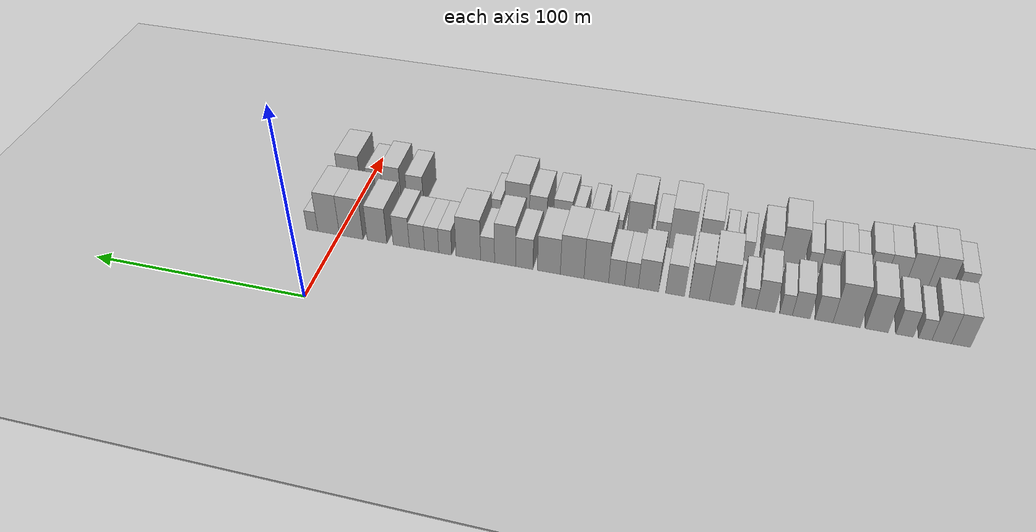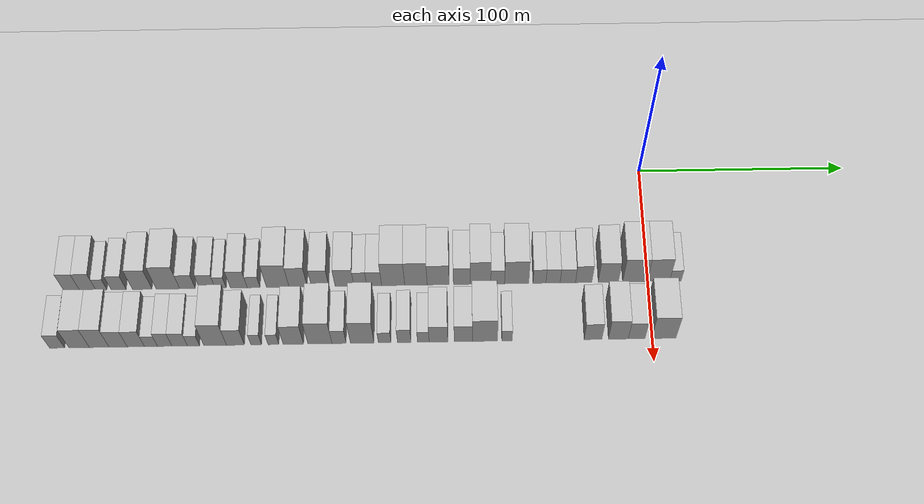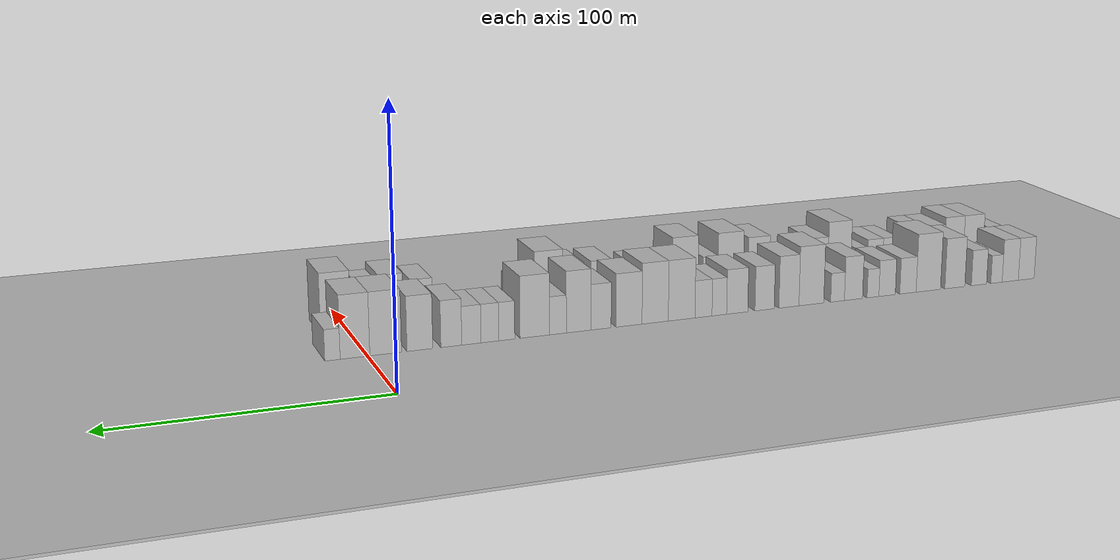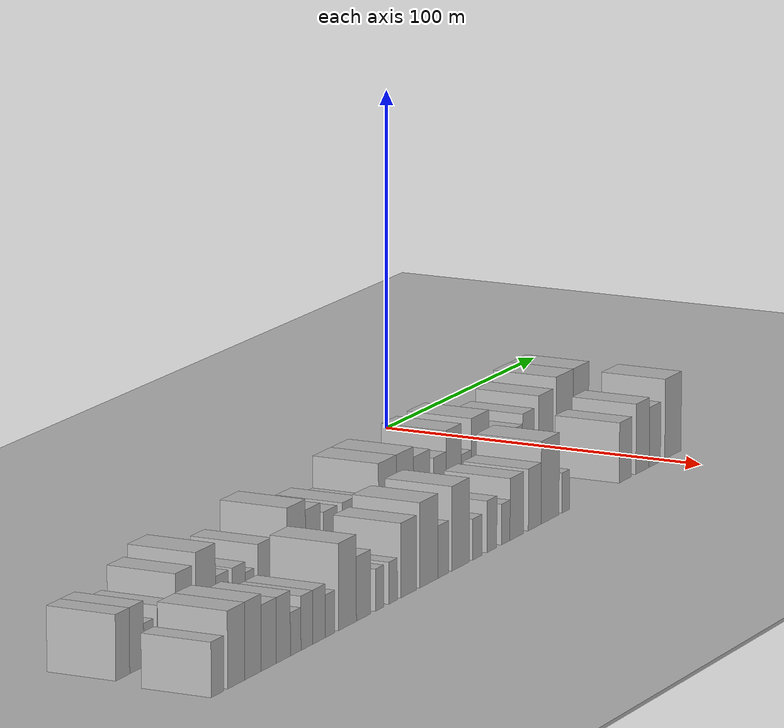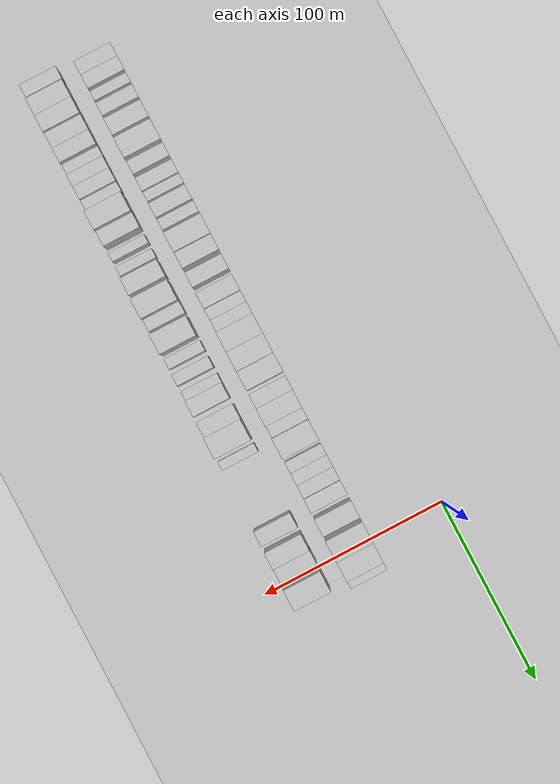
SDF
<sdf version="1.6">
 <world name="default">
  <include><name>ground_plane_1</name><uri>model://HANNAS_ground_plane</uri></include>
  <include>
   <name>ground_plane_2</name>
   <uri>model://HANNAS_ground_plane</uri>
   <pose>100 0 0  0 0 0</pose>
  </include>
  <model name="building_1">
   <static>1</static>
   <pose>50.0000 -271.2881 0 0.000000 0.000000 0.000000</pose>
   <link name="link">
    <pose>0 0 9.00 0 0 0</pose>
    <collision name="collision"><geometry><box><size>20.0000 7.4239 18.0000</size></box></geometry></collision>
    <visual name="visual">
     <cast_shadows>0</cast_shadows>
     <geometry><box><size>20.0000 7.4239 18.0000</size></box></geometry>
     <material>
      <script>
       <uri>model://HANNAS_wall/materials/scripts</uri>
       <uri>model://HANNAS_wall/materials/textures</uri>
       <name>vrc/HANNAS_wall</name>
      </script>
     </material>
    </visual>
   </link>
  </model>
  <model name="building_2">
   <static>1</static>
   <pose>50.0000 -263.7839 0 0.000000 0.000000 0.000000</pose>
   <link name="link">
    <pose>0 0 9.00 0 0 0</pose>
    <collision name="collision"><geometry><box><size>20.0000 7.5845 18.0000</size></box></geometry></collision>
    <visual name="visual">
     <cast_shadows>0</cast_shadows>
     <geometry><box><size>20.0000 7.5845 18.0000</size></box></geometry>
     <material>
      <script>
       <uri>model://HANNAS_wall/materials/scripts</uri>
       <uri>model://HANNAS_wall/materials/textures</uri>
       <name>vrc/HANNAS_wall</name>
      </script>
     </material>
    </visual>
   </link>
  </model>
  <model name="building_3">
   <static>1</static>
   <pose>50.0000 -257.3614 0 0.000000 0.000000 0.000000</pose>
   <link name="link">
    <pose>0 0 6.00 0 0 0</pose>
    <collision name="collision"><geometry><box><size>20.0000 5.2606 12.0000</size></box></geometry></collision>
    <visual name="visual">
     <cast_shadows>0</cast_shadows>
     <geometry><box><size>20.0000 5.2606 12.0000</size></box></geometry>
     <material>
      <script>
       <uri>model://HANNAS_wall/materials/scripts</uri>
       <uri>model://HANNAS_wall/materials/textures</uri>
       <name>vrc/HANNAS_wall</name>
      </script>
     </material>
    </visual>
   </link>
  </model>
  <model name="building_4">
   <static>1</static>
   <pose>50.0000 -249.2254 0 0.000000 0.000000 0.000000</pose>
   <link name="link">
    <pose>0 0 7.50 0 0 0</pose>
    <collision name="collision"><geometry><box><size>20.0000 7.0114 15.0000</size></box></geometry></collision>
    <visual name="visual">
     <cast_shadows>0</cast_shadows>
     <geometry><box><size>20.0000 7.0114 15.0000</size></box></geometry>
     <material>
      <script>
       <uri>model://HANNAS_wall/materials/scripts</uri>
       <uri>model://HANNAS_wall/materials/textures</uri>
       <name>vrc/HANNAS_wall</name>
      </script>
     </material>
    </visual>
   </link>
  </model>
  <model name="building_5">
   <static>1</static>
   <pose>50.0000 -238.1553 0 0.000000 0.000000 0.000000</pose>
   <link name="link">
    <pose>0 0 10.50 0 0 0</pose>
    <collision name="collision"><geometry><box><size>20.0000 9.1288 21.0000</size></box></geometry></collision>
    <visual name="visual">
     <cast_shadows>0</cast_shadows>
     <geometry><box><size>20.0000 9.1288 21.0000</size></box></geometry>
     <material>
      <script>
       <uri>model://HANNAS_wall/materials/scripts</uri>
       <uri>model://HANNAS_wall/materials/textures</uri>
       <name>vrc/HANNAS_wall</name>
      </script>
     </material>
    </visual>
   </link>
  </model>
  <model name="building_6">
   <static>1</static>
   <pose>50.0000 -226.0795 0 0.000000 0.000000 0.000000</pose>
   <link name="link">
    <pose>0 0 12.00 0 0 0</pose>
    <collision name="collision"><geometry><box><size>20.0000 11.0227 24.0000</size></box></geometry></collision>
    <visual name="visual">
     <cast_shadows>0</cast_shadows>
     <geometry><box><size>20.0000 11.0227 24.0000</size></box></geometry>
     <material>
      <script>
       <uri>model://HANNAS_wall/materials/scripts</uri>
       <uri>model://HANNAS_wall/materials/textures</uri>
       <name>vrc/HANNAS_wall</name>
      </script>
     </material>
    </visual>
   </link>
  </model>
  <model name="building_7">
   <static>1</static>
   <pose>50.0000 -216.9120 0 0.000000 0.000000 0.000000</pose>
   <link name="link">
    <pose>0 0 7.50 0 0 0</pose>
    <collision name="collision"><geometry><box><size>20.0000 7.3123 15.0000</size></box></geometry></collision>
    <visual name="visual">
     <cast_shadows>0</cast_shadows>
     <geometry><box><size>20.0000 7.3123 15.0000</size></box></geometry>
     <material>
      <script>
       <uri>model://HANNAS_wall/materials/scripts</uri>
       <uri>model://HANNAS_wall/materials/textures</uri>
       <name>vrc/HANNAS_wall</name>
      </script>
     </material>
    </visual>
   </link>
  </model>
  <model name="building_8">
   <static>1</static>
   <pose>50.0000 -207.6067 0 0.000000 0.000000 0.000000</pose>
   <link name="link">
    <pose>0 0 7.50 0 0 0</pose>
    <collision name="collision"><geometry><box><size>20.0000 7.2984 15.0000</size></box></geometry></collision>
    <visual name="visual">
     <cast_shadows>0</cast_shadows>
     <geometry><box><size>20.0000 7.2984 15.0000</size></box></geometry>
     <material>
      <script>
       <uri>model://HANNAS_wall/materials/scripts</uri>
       <uri>model://HANNAS_wall/materials/textures</uri>
       <name>vrc/HANNAS_wall</name>
      </script>
     </material>
    </visual>
   </link>
  </model>
  <model name="building_9">
   <static>1</static>
   <pose>50.0000 -201.3462 0 0.000000 0.000000 0.000000</pose>
   <link name="link">
    <pose>0 0 6.00 0 0 0</pose>
    <collision name="collision"><geometry><box><size>20.0000 5.2227 12.0000</size></box></geometry></collision>
    <visual name="visual">
     <cast_shadows>0</cast_shadows>
     <geometry><box><size>20.0000 5.2227 12.0000</size></box></geometry>
     <material>
      <script>
       <uri>model://HANNAS_wall/materials/scripts</uri>
       <uri>model://HANNAS_wall/materials/textures</uri>
       <name>vrc/HANNAS_wall</name>
      </script>
     </material>
    </visual>
   </link>
  </model>
  <model name="building_10">
   <static>1</static>
   <pose>50.0000 -192.7805 0 0.000000 0.000000 0.000000</pose>
   <link name="link">
    <pose>0 0 9.00 0 0 0</pose>
    <collision name="collision"><geometry><box><size>20.0000 7.9088 18.0000</size></box></geometry></collision>
    <visual name="visual">
     <cast_shadows>0</cast_shadows>
     <geometry><box><size>20.0000 7.9088 18.0000</size></box></geometry>
     <material>
      <script>
       <uri>model://HANNAS_wall/materials/scripts</uri>
       <uri>model://HANNAS_wall/materials/textures</uri>
       <name>vrc/HANNAS_wall</name>
      </script>
     </material>
    </visual>
   </link>
  </model>
  <model name="building_11">
   <static>1</static>
   <pose>50.0000 -185.8272 0 0.000000 0.000000 0.000000</pose>
   <link name="link">
    <pose>0 0 6.00 0 0 0</pose>
    <collision name="collision"><geometry><box><size>20.0000 5.9977 12.0000</size></box></geometry></collision>
    <visual name="visual">
     <cast_shadows>0</cast_shadows>
     <geometry><box><size>20.0000 5.9977 12.0000</size></box></geometry>
     <material>
      <script>
       <uri>model://HANNAS_wall/materials/scripts</uri>
       <uri>model://HANNAS_wall/materials/textures</uri>
       <name>vrc/HANNAS_wall</name>
      </script>
     </material>
    </visual>
   </link>
  </model>
  <model name="building_12">
   <static>1</static>
   <pose>50.0000 -174.4878 0 0.000000 0.000000 0.000000</pose>
   <link name="link">
    <pose>0 0 12.00 0 0 0</pose>
    <collision name="collision"><geometry><box><size>20.0000 10.6813 24.0000</size></box></geometry></collision>
    <visual name="visual">
     <cast_shadows>0</cast_shadows>
     <geometry><box><size>20.0000 10.6813 24.0000</size></box></geometry>
     <material>
      <script>
       <uri>model://HANNAS_wall/materials/scripts</uri>
       <uri>model://HANNAS_wall/materials/textures</uri>
       <name>vrc/HANNAS_wall</name>
      </script>
     </material>
    </visual>
   </link>
  </model>
  <model name="building_13">
   <static>1</static>
   <pose>50.0000 -164.8769 0 0.000000 0.000000 0.000000</pose>
   <link name="link">
    <pose>0 0 10.50 0 0 0</pose>
    <collision name="collision"><geometry><box><size>20.0000 8.5405 21.0000</size></box></geometry></collision>
    <visual name="visual">
     <cast_shadows>0</cast_shadows>
     <geometry><box><size>20.0000 8.5405 21.0000</size></box></geometry>
     <material>
      <script>
       <uri>model://HANNAS_wall/materials/scripts</uri>
       <uri>model://HANNAS_wall/materials/textures</uri>
       <name>vrc/HANNAS_wall</name>
      </script>
     </material>
    </visual>
   </link>
  </model>
  <model name="building_14">
   <static>1</static>
   <pose>50.0000 -154.5401 0 0.000000 0.000000 0.000000</pose>
   <link name="link">
    <pose>0 0 9.00 0 0 0</pose>
    <collision name="collision"><geometry><box><size>20.0000 8.1332 18.0000</size></box></geometry></collision>
    <visual name="visual">
     <cast_shadows>0</cast_shadows>
     <geometry><box><size>20.0000 8.1332 18.0000</size></box></geometry>
     <material>
      <script>
       <uri>model://HANNAS_wall/materials/scripts</uri>
       <uri>model://HANNAS_wall/materials/textures</uri>
       <name>vrc/HANNAS_wall</name>
      </script>
     </material>
    </visual>
   </link>
  </model>
  <model name="building_15">
   <static>1</static>
   <pose>50.0000 -143.0563 0 0.000000 0.000000 0.000000</pose>
   <link name="link">
    <pose>0 0 9.00 0 0 0</pose>
    <collision name="collision"><geometry><box><size>20.0000 8.8343 18.0000</size></box></geometry></collision>
    <visual name="visual">
     <cast_shadows>0</cast_shadows>
     <geometry><box><size>20.0000 8.8343 18.0000</size></box></geometry>
     <material>
      <script>
       <uri>model://HANNAS_wall/materials/scripts</uri>
       <uri>model://HANNAS_wall/materials/textures</uri>
       <name>vrc/HANNAS_wall</name>
      </script>
     </material>
    </visual>
   </link>
  </model>
  <model name="building_16">
   <static>1</static>
   <pose>50.0000 -135.6108 0 0.000000 0.000000 0.000000</pose>
   <link name="link">
    <pose>0 0 7.50 0 0 0</pose>
    <collision name="collision"><geometry><box><size>20.0000 6.0568 15.0000</size></box></geometry></collision>
    <visual name="visual">
     <cast_shadows>0</cast_shadows>
     <geometry><box><size>20.0000 6.0568 15.0000</size></box></geometry>
     <material>
      <script>
       <uri>model://HANNAS_wall/materials/scripts</uri>
       <uri>model://HANNAS_wall/materials/textures</uri>
       <name>vrc/HANNAS_wall</name>
      </script>
     </material>
    </visual>
   </link>
  </model>
  <model name="building_17">
   <static>1</static>
   <pose>50.0000 -129.0847 0 0.000000 0.000000 0.000000</pose>
   <link name="link">
    <pose>0 0 7.50 0 0 0</pose>
    <collision name="collision"><geometry><box><size>20.0000 6.9954 15.0000</size></box></geometry></collision>
    <visual name="visual">
     <cast_shadows>0</cast_shadows>
     <geometry><box><size>20.0000 6.9954 15.0000</size></box></geometry>
     <material>
      <script>
       <uri>model://HANNAS_wall/materials/scripts</uri>
       <uri>model://HANNAS_wall/materials/textures</uri>
       <name>vrc/HANNAS_wall</name>
      </script>
     </material>
    </visual>
   </link>
  </model>
  <model name="building_18">
   <static>1</static>
   <pose>50.0000 -120.1459 0 0.000000 0.000000 0.000000</pose>
   <link name="link">
    <pose>0 0 12.00 0 0 0</pose>
    <collision name="collision"><geometry><box><size>20.0000 10.8822 24.0000</size></box></geometry></collision>
    <visual name="visual">
     <cast_shadows>0</cast_shadows>
     <geometry><box><size>20.0000 10.8822 24.0000</size></box></geometry>
     <material>
      <script>
       <uri>model://HANNAS_wall/materials/scripts</uri>
       <uri>model://HANNAS_wall/materials/textures</uri>
       <name>vrc/HANNAS_wall</name>
      </script>
     </material>
    </visual>
   </link>
  </model>
  <model name="building_19">
   <static>1</static>
   <pose>50.0000 -109.3991 0 0.000000 0.000000 0.000000</pose>
   <link name="link">
    <pose>0 0 12.00 0 0 0</pose>
    <collision name="collision"><geometry><box><size>20.0000 10.6114 24.0000</size></box></geometry></collision>
    <visual name="visual">
     <cast_shadows>0</cast_shadows>
     <geometry><box><size>20.0000 10.6114 24.0000</size></box></geometry>
     <material>
      <script>
       <uri>model://HANNAS_wall/materials/scripts</uri>
       <uri>model://HANNAS_wall/materials/textures</uri>
       <name>vrc/HANNAS_wall</name>
      </script>
     </material>
    </visual>
   </link>
  </model>
  <model name="building_20">
   <static>1</static>
   <pose>50.0000 -98.9195 0 0.000000 0.000000 0.000000</pose>
   <link name="link">
    <pose>0 0 10.50 0 0 0</pose>
    <collision name="collision"><geometry><box><size>20.0000 10.3479 21.0000</size></box></geometry></collision>
    <visual name="visual">
     <cast_shadows>0</cast_shadows>
     <geometry><box><size>20.0000 10.3479 21.0000</size></box></geometry>
     <material>
      <script>
       <uri>model://HANNAS_wall/materials/scripts</uri>
       <uri>model://HANNAS_wall/materials/textures</uri>
       <name>vrc/HANNAS_wall</name>
      </script>
     </material>
    </visual>
   </link>
  </model>
  <model name="building_21">
   <static>1</static>
   <pose>50.0000 -87.7739 0 0.000000 0.000000 0.000000</pose>
   <link name="link">
    <pose>0 0 9.00 0 0 0</pose>
    <collision name="collision"><geometry><box><size>20.0000 7.9433 18.0000</size></box></geometry></collision>
    <visual name="visual">
     <cast_shadows>0</cast_shadows>
     <geometry><box><size>20.0000 7.9433 18.0000</size></box></geometry>
     <material>
      <script>
       <uri>model://HANNAS_wall/materials/scripts</uri>
       <uri>model://HANNAS_wall/materials/textures</uri>
       <name>vrc/HANNAS_wall</name>
      </script>
     </material>
    </visual>
   </link>
  </model>
  <model name="building_22">
   <static>1</static>
   <pose>50.0000 -78.9859 0 0.000000 0.000000 0.000000</pose>
   <link name="link">
    <pose>0 0 12.00 0 0 0</pose>
    <collision name="collision"><geometry><box><size>20.0000 9.6326 24.0000</size></box></geometry></collision>
    <visual name="visual">
     <cast_shadows>0</cast_shadows>
     <geometry><box><size>20.0000 9.6326 24.0000</size></box></geometry>
     <material>
      <script>
       <uri>model://HANNAS_wall/materials/scripts</uri>
       <uri>model://HANNAS_wall/materials/textures</uri>
       <name>vrc/HANNAS_wall</name>
      </script>
     </material>
    </visual>
   </link>
  </model>
  <model name="building_23">
   <static>1</static>
   <pose>50.0000 -70.9266 0 0.000000 0.000000 0.000000</pose>
   <link name="link">
    <pose>0 0 7.50 0 0 0</pose>
    <collision name="collision"><geometry><box><size>20.0000 6.4860 15.0000</size></box></geometry></collision>
    <visual name="visual">
     <cast_shadows>0</cast_shadows>
     <geometry><box><size>20.0000 6.4860 15.0000</size></box></geometry>
     <material>
      <script>
       <uri>model://HANNAS_wall/materials/scripts</uri>
       <uri>model://HANNAS_wall/materials/textures</uri>
       <name>vrc/HANNAS_wall</name>
      </script>
     </material>
    </visual>
   </link>
  </model>
  <model name="building_24">
   <static>1</static>
   <pose>50.0000 -61.9832 0 0.000000 0.000000 0.000000</pose>
   <link name="link">
    <pose>0 0 12.00 0 0 0</pose>
    <collision name="collision"><geometry><box><size>20.0000 11.4007 24.0000</size></box></geometry></collision>
    <visual name="visual">
     <cast_shadows>0</cast_shadows>
     <geometry><box><size>20.0000 11.4007 24.0000</size></box></geometry>
     <material>
      <script>
       <uri>model://HANNAS_wall/materials/scripts</uri>
       <uri>model://HANNAS_wall/materials/textures</uri>
       <name>vrc/HANNAS_wall</name>
      </script>
     </material>
    </visual>
   </link>
  </model>
  <model name="building_25">
   <static>1</static>
   <pose>50.0000 -51.2385 0 0.000000 0.000000 0.000000</pose>
   <link name="link">
    <pose>0 0 7.50 0 0 0</pose>
    <collision name="collision"><geometry><box><size>20.0000 6.0887 15.0000</size></box></geometry></collision>
    <visual name="visual">
     <cast_shadows>0</cast_shadows>
     <geometry><box><size>20.0000 6.0887 15.0000</size></box></geometry>
     <material>
      <script>
       <uri>model://HANNAS_wall/materials/scripts</uri>
       <uri>model://HANNAS_wall/materials/textures</uri>
       <name>vrc/HANNAS_wall</name>
      </script>
     </material>
    </visual>
   </link>
  </model>
  <model name="building_26">
   <static>1</static>
   <pose>50.0000 -44.8371 0 0.000000 0.000000 0.000000</pose>
   <link name="link">
    <pose>0 0 7.50 0 0 0</pose>
    <collision name="collision"><geometry><box><size>20.0000 6.7143 15.0000</size></box></geometry></collision>
    <visual name="visual">
     <cast_shadows>0</cast_shadows>
     <geometry><box><size>20.0000 6.7143 15.0000</size></box></geometry>
     <material>
      <script>
       <uri>model://HANNAS_wall/materials/scripts</uri>
       <uri>model://HANNAS_wall/materials/textures</uri>
       <name>vrc/HANNAS_wall</name>
      </script>
     </material>
    </visual>
   </link>
  </model>
  <model name="building_27">
   <static>1</static>
   <pose>50.0000 -37.8603 0 0.000000 0.000000 0.000000</pose>
   <link name="link">
    <pose>0 0 7.50 0 0 0</pose>
    <collision name="collision"><geometry><box><size>20.0000 7.2393 15.0000</size></box></geometry></collision>
    <visual name="visual">
     <cast_shadows>0</cast_shadows>
     <geometry><box><size>20.0000 7.2393 15.0000</size></box></geometry>
     <material>
      <script>
       <uri>model://HANNAS_wall/materials/scripts</uri>
       <uri>model://HANNAS_wall/materials/textures</uri>
       <name>vrc/HANNAS_wall</name>
      </script>
     </material>
    </visual>
   </link>
  </model>
  <model name="building_28">
   <static>1</static>
   <pose>50.0000 -30.3558 0 0.000000 0.000000 0.000000</pose>
   <link name="link">
    <pose>0 0 9.00 0 0 0</pose>
    <collision name="collision"><geometry><box><size>20.0000 7.7696 18.0000</size></box></geometry></collision>
    <visual name="visual">
     <cast_shadows>0</cast_shadows>
     <geometry><box><size>20.0000 7.7696 18.0000</size></box></geometry>
     <material>
      <script>
       <uri>model://HANNAS_wall/materials/scripts</uri>
       <uri>model://HANNAS_wall/materials/textures</uri>
       <name>vrc/HANNAS_wall</name>
      </script>
     </material>
    </visual>
   </link>
  </model>
  <model name="building_29">
   <static>1</static>
   <pose>50.0000 -18.7199 0 0.000000 0.000000 0.000000</pose>
   <link name="link">
    <pose>0 0 10.50 0 0 0</pose>
    <collision name="collision"><geometry><box><size>20.0000 9.5024 21.0000</size></box></geometry></collision>
    <visual name="visual">
     <cast_shadows>0</cast_shadows>
     <geometry><box><size>20.0000 9.5024 21.0000</size></box></geometry>
     <material>
      <script>
       <uri>model://HANNAS_wall/materials/scripts</uri>
       <uri>model://HANNAS_wall/materials/textures</uri>
       <name>vrc/HANNAS_wall</name>
      </script>
     </material>
    </visual>
   </link>
  </model>
  <model name="building_30">
   <static>1</static>
   <pose>50.0000 -6.2122 0 0.000000 0.000000 0.000000</pose>
   <link name="link">
    <pose>0 0 12.00 0 0 0</pose>
    <collision name="collision"><geometry><box><size>20.0000 11.5130 24.0000</size></box></geometry></collision>
    <visual name="visual">
     <cast_shadows>0</cast_shadows>
     <geometry><box><size>20.0000 11.5130 24.0000</size></box></geometry>
     <material>
      <script>
       <uri>model://HANNAS_wall/materials/scripts</uri>
       <uri>model://HANNAS_wall/materials/textures</uri>
       <name>vrc/HANNAS_wall</name>
      </script>
     </material>
    </visual>
   </link>
  </model>
  <model name="building_31">
   <static>1</static>
   <pose>50.0000 4.8688 0 0.000000 0.000000 0.000000</pose>
   <link name="link">
    <pose>0 0 12.00 0 0 0</pose>
    <collision name="collision"><geometry><box><size>20.0000 10.6490 24.0000</size></box></geometry></collision>
    <visual name="visual">
     <cast_shadows>0</cast_shadows>
     <geometry><box><size>20.0000 10.6490 24.0000</size></box></geometry>
     <material>
      <script>
       <uri>model://HANNAS_wall/materials/scripts</uri>
       <uri>model://HANNAS_wall/materials/textures</uri>
       <name>vrc/HANNAS_wall</name>
      </script>
     </material>
    </visual>
   </link>
  </model>
  <model name="building_32">
   <static>1</static>
   <pose>50.0000 12.9377 0 0.000000 0.000000 0.000000</pose>
   <link name="link">
    <pose>0 0 6.00 0 0 0</pose>
    <collision name="collision"><geometry><box><size>20.0000 5.4888 12.0000</size></box></geometry></collision>
    <visual name="visual">
     <cast_shadows>0</cast_shadows>
     <geometry><box><size>20.0000 5.4888 12.0000</size></box></geometry>
     <material>
      <script>
       <uri>model://HANNAS_wall/materials/scripts</uri>
       <uri>model://HANNAS_wall/materials/textures</uri>
       <name>vrc/HANNAS_wall</name>
      </script>
     </material>
    </visual>
   </link>
  </model>
  <model name="building_63">
   <static>1</static>
   <pose>79.0000 -274.5551 0 0.000000 0.000000 0.000000</pose>
   <link name="link">
    <pose>0 0 7.50 0 0 0</pose>
    <collision name="collision"><geometry><box><size>20.0000 6.8898 15.0000</size></box></geometry></collision>
    <visual name="visual">
     <cast_shadows>0</cast_shadows>
     <geometry><box><size>20.0000 6.8898 15.0000</size></box></geometry>
     <material>
      <script>
       <uri>model://HANNAS_wall/materials/scripts</uri>
       <uri>model://HANNAS_wall/materials/textures</uri>
       <name>vrc/HANNAS_wall</name>
      </script>
     </material>
    </visual>
   </link>
  </model>
  <model name="building_64">
   <static>1</static>
   <pose>79.0000 -264.4121 0 0.000000 0.000000 0.000000</pose>
   <link name="link">
    <pose>0 0 10.50 0 0 0</pose>
    <collision name="collision"><geometry><box><size>20.0000 9.3963 21.0000</size></box></geometry></collision>
    <visual name="visual">
     <cast_shadows>0</cast_shadows>
     <geometry><box><size>20.0000 9.3963 21.0000</size></box></geometry>
     <material>
      <script>
       <uri>model://HANNAS_wall/materials/scripts</uri>
       <uri>model://HANNAS_wall/materials/textures</uri>
       <name>vrc/HANNAS_wall</name>
      </script>
     </material>
    </visual>
   </link>
  </model>
  <model name="building_65">
   <static>1</static>
   <pose>79.0000 -255.1924 0 0.000000 0.000000 0.000000</pose>
   <link name="link">
    <pose>0 0 10.50 0 0 0</pose>
    <collision name="collision"><geometry><box><size>20.0000 9.0431 21.0000</size></box></geometry></collision>
    <visual name="visual">
     <cast_shadows>0</cast_shadows>
     <geometry><box><size>20.0000 9.0431 21.0000</size></box></geometry>
     <material>
      <script>
       <uri>model://HANNAS_wall/materials/scripts</uri>
       <uri>model://HANNAS_wall/materials/textures</uri>
       <name>vrc/HANNAS_wall</name>
      </script>
     </material>
    </visual>
   </link>
  </model>
  <model name="building_66">
   <static>1</static>
   <pose>79.0000 -246.4859 0 0.000000 0.000000 0.000000</pose>
   <link name="link">
    <pose>0 0 9.00 0 0 0</pose>
    <collision name="collision"><geometry><box><size>20.0000 8.3699 18.0000</size></box></geometry></collision>
    <visual name="visual">
     <cast_shadows>0</cast_shadows>
     <geometry><box><size>20.0000 8.3699 18.0000</size></box></geometry>
     <material>
      <script>
       <uri>model://HANNAS_wall/materials/scripts</uri>
       <uri>model://HANNAS_wall/materials/textures</uri>
       <name>vrc/HANNAS_wall</name>
      </script>
     </material>
    </visual>
   </link>
  </model>
  <model name="building_67">
   <static>1</static>
   <pose>79.0000 -238.3547 0 0.000000 0.000000 0.000000</pose>
   <link name="link">
    <pose>0 0 9.00 0 0 0</pose>
    <collision name="collision"><geometry><box><size>20.0000 7.8924 18.0000</size></box></geometry></collision>
    <visual name="visual">
     <cast_shadows>0</cast_shadows>
     <geometry><box><size>20.0000 7.8924 18.0000</size></box></geometry>
     <material>
      <script>
       <uri>model://HANNAS_wall/materials/scripts</uri>
       <uri>model://HANNAS_wall/materials/textures</uri>
       <name>vrc/HANNAS_wall</name>
      </script>
     </material>
    </visual>
   </link>
  </model>
  <model name="building_68">
   <static>1</static>
   <pose>79.0000 -231.4180 0 0.000000 0.000000 0.000000</pose>
   <link name="link">
    <pose>0 0 6.00 0 0 0</pose>
    <collision name="collision"><geometry><box><size>20.0000 5.9810 12.0000</size></box></geometry></collision>
    <visual name="visual">
     <cast_shadows>0</cast_shadows>
     <geometry><box><size>20.0000 5.9810 12.0000</size></box></geometry>
     <material>
      <script>
       <uri>model://HANNAS_wall/materials/scripts</uri>
       <uri>model://HANNAS_wall/materials/textures</uri>
       <name>vrc/HANNAS_wall</name>
      </script>
     </material>
    </visual>
   </link>
  </model>
  <model name="building_69">
   <static>1</static>
   <pose>79.0000 -225.0969 0 0.000000 0.000000 0.000000</pose>
   <link name="link">
    <pose>0 0 7.50 0 0 0</pose>
    <collision name="collision"><geometry><box><size>20.0000 6.6612 15.0000</size></box></geometry></collision>
    <visual name="visual">
     <cast_shadows>0</cast_shadows>
     <geometry><box><size>20.0000 6.6612 15.0000</size></box></geometry>
     <material>
      <script>
       <uri>model://HANNAS_wall/materials/scripts</uri>
       <uri>model://HANNAS_wall/materials/textures</uri>
       <name>vrc/HANNAS_wall</name>
      </script>
     </material>
    </visual>
   </link>
  </model>
  <model name="building_70">
   <static>1</static>
   <pose>79.0000 -218.1759 0 0.000000 0.000000 0.000000</pose>
   <link name="link">
    <pose>0 0 7.50 0 0 0</pose>
    <collision name="collision"><geometry><box><size>20.0000 7.1807 15.0000</size></box></geometry></collision>
    <visual name="visual">
     <cast_shadows>0</cast_shadows>
     <geometry><box><size>20.0000 7.1807 15.0000</size></box></geometry>
     <material>
      <script>
       <uri>model://HANNAS_wall/materials/scripts</uri>
       <uri>model://HANNAS_wall/materials/textures</uri>
       <name>vrc/HANNAS_wall</name>
      </script>
     </material>
    </visual>
   </link>
  </model>
  <model name="building_71">
   <static>1</static>
   <pose>79.0000 -211.8212 0 0.000000 0.000000 0.000000</pose>
   <link name="link">
    <pose>0 0 6.00 0 0 0</pose>
    <collision name="collision"><geometry><box><size>20.0000 5.5285 12.0000</size></box></geometry></collision>
    <visual name="visual">
     <cast_shadows>0</cast_shadows>
     <geometry><box><size>20.0000 5.5285 12.0000</size></box></geometry>
     <material>
      <script>
       <uri>model://HANNAS_wall/materials/scripts</uri>
       <uri>model://HANNAS_wall/materials/textures</uri>
       <name>vrc/HANNAS_wall</name>
      </script>
     </material>
    </visual>
   </link>
  </model>
  <model name="building_72">
   <static>1</static>
   <pose>79.0000 -201.8440 0 0.000000 0.000000 0.000000</pose>
   <link name="link">
    <pose>0 0 12.00 0 0 0</pose>
    <collision name="collision"><geometry><box><size>20.0000 10.4260 24.0000</size></box></geometry></collision>
    <visual name="visual">
     <cast_shadows>0</cast_shadows>
     <geometry><box><size>20.0000 10.4260 24.0000</size></box></geometry>
     <material>
      <script>
       <uri>model://HANNAS_wall/materials/scripts</uri>
       <uri>model://HANNAS_wall/materials/textures</uri>
       <name>vrc/HANNAS_wall</name>
      </script>
     </material>
    </visual>
   </link>
  </model>
  <model name="building_73">
   <static>1</static>
   <pose>79.0000 -192.5272 0 0.000000 0.000000 0.000000</pose>
   <link name="link">
    <pose>0 0 9.00 0 0 0</pose>
    <collision name="collision"><geometry><box><size>20.0000 8.2077 18.0000</size></box></geometry></collision>
    <visual name="visual">
     <cast_shadows>0</cast_shadows>
     <geometry><box><size>20.0000 8.2077 18.0000</size></box></geometry>
     <material>
      <script>
       <uri>model://HANNAS_wall/materials/scripts</uri>
       <uri>model://HANNAS_wall/materials/textures</uri>
       <name>vrc/HANNAS_wall</name>
      </script>
     </material>
    </visual>
   </link>
  </model>
  <model name="building_74">
   <static>1</static>
   <pose>79.0000 -182.9778 0 0.000000 0.000000 0.000000</pose>
   <link name="link">
    <pose>0 0 6.00 0 0 0</pose>
    <collision name="collision"><geometry><box><size>20.0000 4.8911 12.0000</size></box></geometry></collision>
    <visual name="visual">
     <cast_shadows>0</cast_shadows>
     <geometry><box><size>20.0000 4.8911 12.0000</size></box></geometry>
     <material>
      <script>
       <uri>model://HANNAS_wall/materials/scripts</uri>
       <uri>model://HANNAS_wall/materials/textures</uri>
       <name>vrc/HANNAS_wall</name>
      </script>
     </material>
    </visual>
   </link>
  </model>
  <model name="building_75">
   <static>1</static>
   <pose>79.0000 -175.0180 0 0.000000 0.000000 0.000000</pose>
   <link name="link">
    <pose>0 0 6.00 0 0 0</pose>
    <collision name="collision"><geometry><box><size>20.0000 5.0286 12.0000</size></box></geometry></collision>
    <visual name="visual">
     <cast_shadows>0</cast_shadows>
     <geometry><box><size>20.0000 5.0286 12.0000</size></box></geometry>
     <material>
      <script>
       <uri>model://HANNAS_wall/materials/scripts</uri>
       <uri>model://HANNAS_wall/materials/textures</uri>
       <name>vrc/HANNAS_wall</name>
      </script>
     </material>
    </visual>
   </link>
  </model>
  <model name="building_76">
   <static>1</static>
   <pose>79.0000 -165.8195 0 0.000000 0.000000 0.000000</pose>
   <link name="link">
    <pose>0 0 10.50 0 0 0</pose>
    <collision name="collision"><geometry><box><size>20.0000 9.3684 21.0000</size></box></geometry></collision>
    <visual name="visual">
     <cast_shadows>0</cast_shadows>
     <geometry><box><size>20.0000 9.3684 21.0000</size></box></geometry>
     <material>
      <script>
       <uri>model://HANNAS_wall/materials/scripts</uri>
       <uri>model://HANNAS_wall/materials/textures</uri>
       <name>vrc/HANNAS_wall</name>
      </script>
     </material>
    </visual>
   </link>
  </model>
  <model name="building_77">
   <static>1</static>
   <pose>79.0000 -153.5927 0 0.000000 0.000000 0.000000</pose>
   <link name="link">
    <pose>0 0 12.00 0 0 0</pose>
    <collision name="collision"><geometry><box><size>20.0000 11.0852 24.0000</size></box></geometry></collision>
    <visual name="visual">
     <cast_shadows>0</cast_shadows>
     <geometry><box><size>20.0000 11.0852 24.0000</size></box></geometry>
     <material>
      <script>
       <uri>model://HANNAS_wall/materials/scripts</uri>
       <uri>model://HANNAS_wall/materials/textures</uri>
       <name>vrc/HANNAS_wall</name>
      </script>
     </material>
    </visual>
   </link>
  </model>
  <model name="building_78">
   <static>1</static>
   <pose>79.0000 -144.7831 0 0.000000 0.000000 0.000000</pose>
   <link name="link">
    <pose>0 0 7.50 0 0 0</pose>
    <collision name="collision"><geometry><box><size>20.0000 6.5339 15.0000</size></box></geometry></collision>
    <visual name="visual">
     <cast_shadows>0</cast_shadows>
     <geometry><box><size>20.0000 6.5339 15.0000</size></box></geometry>
     <material>
      <script>
       <uri>model://HANNAS_wall/materials/scripts</uri>
       <uri>model://HANNAS_wall/materials/textures</uri>
       <name>vrc/HANNAS_wall</name>
      </script>
     </material>
    </visual>
   </link>
  </model>
  <model name="building_79">
   <static>1</static>
   <pose>79.0000 -134.0889 0 0.000000 0.000000 0.000000</pose>
   <link name="link">
    <pose>0 0 12.00 0 0 0</pose>
    <collision name="collision"><geometry><box><size>20.0000 10.8545 24.0000</size></box></geometry></collision>
    <visual name="visual">
     <cast_shadows>0</cast_shadows>
     <geometry><box><size>20.0000 10.8545 24.0000</size></box></geometry>
     <material>
      <script>
       <uri>model://HANNAS_wall/materials/scripts</uri>
       <uri>model://HANNAS_wall/materials/textures</uri>
       <name>vrc/HANNAS_wall</name>
      </script>
     </material>
    </visual>
   </link>
  </model>
  <model name="building_80">
   <static>1</static>
   <pose>79.0000 -123.7408 0 0.000000 0.000000 0.000000</pose>
   <link name="link">
    <pose>0 0 6.00 0 0 0</pose>
    <collision name="collision"><geometry><box><size>20.0000 5.8416 12.0000</size></box></geometry></collision>
    <visual name="visual">
     <cast_shadows>0</cast_shadows>
     <geometry><box><size>20.0000 5.8416 12.0000</size></box></geometry>
     <material>
      <script>
       <uri>model://HANNAS_wall/materials/scripts</uri>
       <uri>model://HANNAS_wall/materials/textures</uri>
       <name>vrc/HANNAS_wall</name>
      </script>
     </material>
    </visual>
   </link>
  </model>
  <model name="building_81">
   <static>1</static>
   <pose>79.0000 -114.7056 0 0.000000 0.000000 0.000000</pose>
   <link name="link">
    <pose>0 0 7.50 0 0 0</pose>
    <collision name="collision"><geometry><box><size>20.0000 6.2287 15.0000</size></box></geometry></collision>
    <visual name="visual">
     <cast_shadows>0</cast_shadows>
     <geometry><box><size>20.0000 6.2287 15.0000</size></box></geometry>
     <material>
      <script>
       <uri>model://HANNAS_wall/materials/scripts</uri>
       <uri>model://HANNAS_wall/materials/textures</uri>
       <name>vrc/HANNAS_wall</name>
      </script>
     </material>
    </visual>
   </link>
  </model>
  <model name="building_82">
   <static>1</static>
   <pose>79.0000 -105.9142 0 0.000000 0.000000 0.000000</pose>
   <link name="link">
    <pose>0 0 6.00 0 0 0</pose>
    <collision name="collision"><geometry><box><size>20.0000 5.3541 12.0000</size></box></geometry></collision>
    <visual name="visual">
     <cast_shadows>0</cast_shadows>
     <geometry><box><size>20.0000 5.3541 12.0000</size></box></geometry>
     <material>
      <script>
       <uri>model://HANNAS_wall/materials/scripts</uri>
       <uri>model://HANNAS_wall/materials/textures</uri>
       <name>vrc/HANNAS_wall</name>
      </script>
     </material>
    </visual>
   </link>
  </model>
  <model name="building_83">
   <static>1</static>
   <pose>79.0000 -98.8980 0 0.000000 0.000000 0.000000</pose>
   <link name="link">
    <pose>0 0 9.00 0 0 0</pose>
    <collision name="collision"><geometry><box><size>20.0000 8.6783 18.0000</size></box></geometry></collision>
    <visual name="visual">
     <cast_shadows>0</cast_shadows>
     <geometry><box><size>20.0000 8.6783 18.0000</size></box></geometry>
     <material>
      <script>
       <uri>model://HANNAS_wall/materials/scripts</uri>
       <uri>model://HANNAS_wall/materials/textures</uri>
       <name>vrc/HANNAS_wall</name>
      </script>
     </material>
    </visual>
   </link>
  </model>
  <model name="building_84">
   <static>1</static>
   <pose>79.0000 -87.3843 0 0.000000 0.000000 0.000000</pose>
   <link name="link">
    <pose>0 0 9.00 0 0 0</pose>
    <collision name="collision"><geometry><box><size>20.0000 8.3491 18.0000</size></box></geometry></collision>
    <visual name="visual">
     <cast_shadows>0</cast_shadows>
     <geometry><box><size>20.0000 8.3491 18.0000</size></box></geometry>
     <material>
      <script>
       <uri>model://HANNAS_wall/materials/scripts</uri>
       <uri>model://HANNAS_wall/materials/textures</uri>
       <name>vrc/HANNAS_wall</name>
      </script>
     </material>
    </visual>
   </link>
  </model>
  <model name="building_85">
   <static>1</static>
   <pose>79.0000 -77.4440 0 0.000000 0.000000 0.000000</pose>
   <link name="link">
    <pose>0 0 12.00 0 0 0</pose>
    <collision name="collision"><geometry><box><size>20.0000 11.5315 24.0000</size></box></geometry></collision>
    <visual name="visual">
     <cast_shadows>0</cast_shadows>
     <geometry><box><size>20.0000 11.5315 24.0000</size></box></geometry>
     <material>
      <script>
       <uri>model://HANNAS_wall/materials/scripts</uri>
       <uri>model://HANNAS_wall/materials/textures</uri>
       <name>vrc/HANNAS_wall</name>
      </script>
     </material>
    </visual>
   </link>
  </model>
  <model name="building_86">
   <static>1</static>
   <pose>79.0000 -67.2774 0 0.000000 0.000000 0.000000</pose>
   <link name="link">
    <pose>0 0 6.00 0 0 0</pose>
    <collision name="collision"><geometry><box><size>20.0000 4.8016 12.0000</size></box></geometry></collision>
    <visual name="visual">
     <cast_shadows>0</cast_shadows>
     <geometry><box><size>20.0000 4.8016 12.0000</size></box></geometry>
     <material>
      <script>
       <uri>model://HANNAS_wall/materials/scripts</uri>
       <uri>model://HANNAS_wall/materials/textures</uri>
       <name>vrc/HANNAS_wall</name>
      </script>
     </material>
    </visual>
   </link>
  </model>
  <model name="building_87">
   <static>1</static>
   <pose>79.0000 -27.5234 0 0.000000 0.000000 0.000000</pose>
   <link name="link">
    <pose>0 0 9.00 0 0 0</pose>
    <collision name="collision"><geometry><box><size>20.0000 8.2355 18.0000</size></box></geometry></collision>
    <visual name="visual">
     <cast_shadows>0</cast_shadows>
     <geometry><box><size>20.0000 8.2355 18.0000</size></box></geometry>
     <material>
      <script>
       <uri>model://HANNAS_wall/materials/scripts</uri>
       <uri>model://HANNAS_wall/materials/textures</uri>
       <name>vrc/HANNAS_wall</name>
      </script>
     </material>
    </visual>
   </link>
  </model>
  <model name="building_88">
   <static>1</static>
   <pose>79.0000 -15.8421 0 0.000000 0.000000 0.000000</pose>
   <link name="link">
    <pose>0 0 10.50 0 0 0</pose>
    <collision name="collision"><geometry><box><size>20.0000 9.1270 21.0000</size></box></geometry></collision>
    <visual name="visual">
     <cast_shadows>0</cast_shadows>
     <geometry><box><size>20.0000 9.1270 21.0000</size></box></geometry>
     <material>
      <script>
       <uri>model://HANNAS_wall/materials/scripts</uri>
       <uri>model://HANNAS_wall/materials/textures</uri>
       <name>vrc/HANNAS_wall</name>
      </script>
     </material>
    </visual>
   </link>
  </model>
  <model name="building_89">
   <static>1</static>
   <pose>79.0000 -7.3843 0 0.000000 0.000000 0.000000</pose>
   <link name="link">
    <pose>0 0 9.00 0 0 0</pose>
    <collision name="collision"><geometry><box><size>20.0000 7.7886 18.0000</size></box></geometry></collision>
    <visual name="visual">
     <cast_shadows>0</cast_shadows>
     <geometry><box><size>20.0000 7.7886 18.0000</size></box></geometry>
     <material>
      <script>
       <uri>model://HANNAS_wall/materials/scripts</uri>
       <uri>model://HANNAS_wall/materials/textures</uri>
       <name>vrc/HANNAS_wall</name>
      </script>
     </material>
    </visual>
   </link>
  </model>
  <model name="building_90">
   <static>1</static>
   <pose>79.0000 5.1599 0 0.000000 0.000000 0.000000</pose>
   <link name="link">
    <pose>0 0 12.00 0 0 0</pose>
    <collision name="collision"><geometry><box><size>20.0000 11.2997 24.0000</size></box></geometry></collision>
    <visual name="visual">
     <cast_shadows>0</cast_shadows>
     <geometry><box><size>20.0000 11.2997 24.0000</size></box></geometry>
     <material>
      <script>
       <uri>model://HANNAS_wall/materials/scripts</uri>
       <uri>model://HANNAS_wall/materials/textures</uri>
       <name>vrc/HANNAS_wall</name>
      </script>
     </material>
    </visual>
   </link>
  </model>
 </world>
</sdf>
